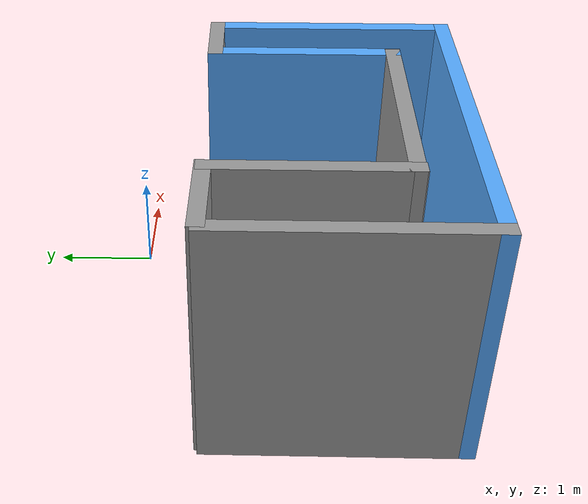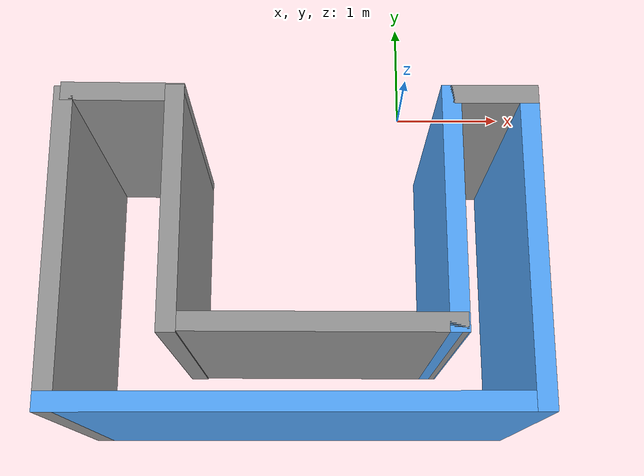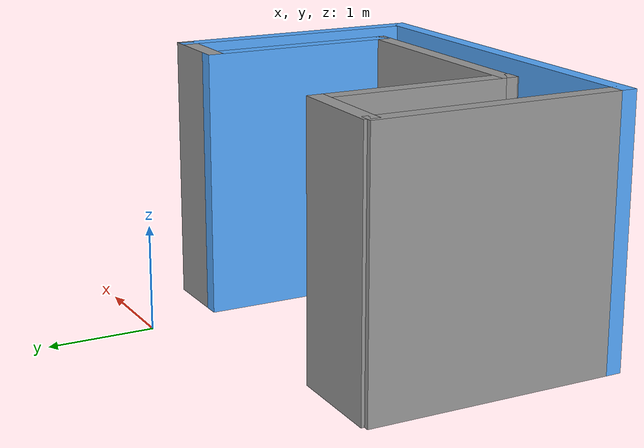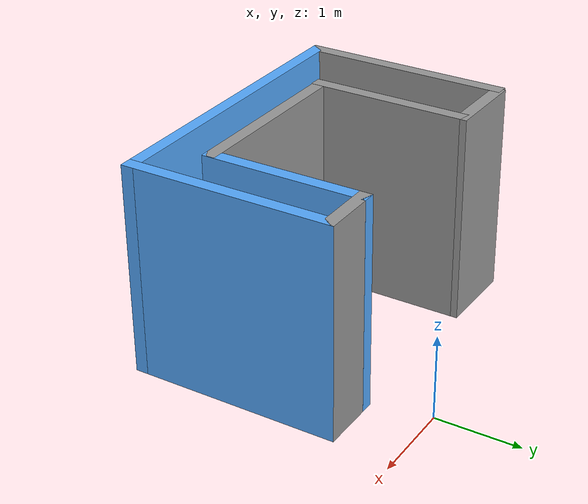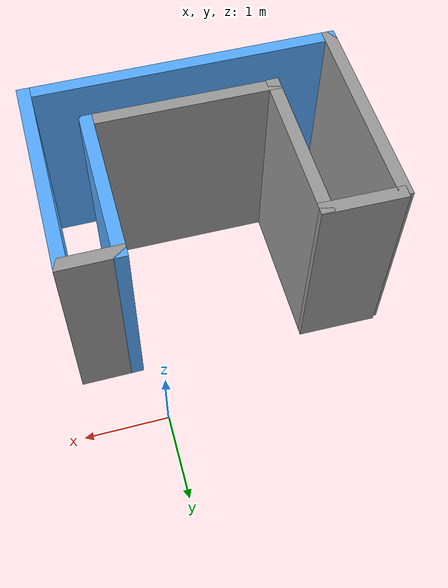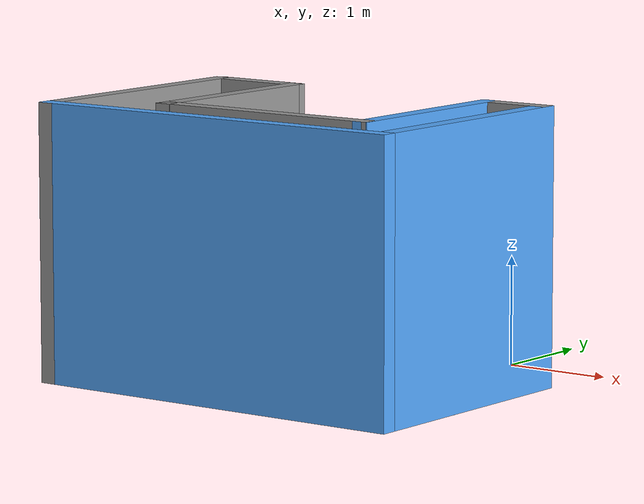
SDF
<?xml version='1.0'?>
<sdf version='1.6'>
  <model name='mybuilding'>
    <pose frame=''>-0.98 -1.91954 0 0 -0 0</pose>
    <link name='Wall_0'>
      <collision name='Wall_0_Collision'>
        <geometry>
          <box>
            <size>0.960247 0.15 2.5</size>
          </box>
        </geometry>
        <pose frame=''>0 0 1.25 0 -0 0</pose>
      </collision>
      <visual name='Wall_0_Visual'>
        <pose frame=''>0 0 1.25 0 -0 0</pose>
        <geometry>
          <box>
            <size>0.960247 0.15 2.5</size>
          </box>
        </geometry>
        <material>
          <script>
            <uri>file://media/materials/scripts/gazebo.material</uri>
            <name>Gazebo/Grey</name>
          </script>
          <ambient>1 1 1 1</ambient>
        </material>
        <meta>
          <layer>0</layer>
        </meta>
      </visual>
      <pose frame=''>-1.345 1.18454 0 0 0 -0.012345</pose>
    </link>
    <link name='Wall_1'>
      <collision name='Wall_1_Collision'>
        <geometry>
          <box>
            <size>1.94 0.15 2.5</size>
          </box>
        </geometry>
        <pose frame=''>0 0 1.25 0 -0 0</pose>
      </collision>
      <visual name='Wall_1_Visual'>
        <pose frame=''>0 0 1.25 0 -0 0</pose>
        <geometry>
          <box>
            <size>1.94 0.15 2.5</size>
          </box>
        </geometry>
        <material>
          <script>
            <uri>file://media/materials/scripts/gazebo.material</uri>
            <name>Gazebo/Grey</name>
          </script>
          <ambient>1 1 1 1</ambient>
        </material>
        <meta>
          <layer>0</layer>
        </meta>
      </visual>
      <pose frame=''>-0.94 0.274539 0 0 0 -1.5708</pose>
    </link>
    <link name='Wall_2'>
      <collision name='Wall_2_Collision'>
        <geometry>
          <box>
            <size>2.28038 0.15 2.5</size>
          </box>
        </geometry>
        <pose frame=''>0 0 1.25 0 -0 0</pose>
      </collision>
      <visual name='Wall_2_Visual'>
        <pose frame=''>0 0 1.25 0 -0 0</pose>
        <geometry>
          <box>
            <size>2.28038 0.15 2.5</size>
          </box>
        </geometry>
        <material>
          <script>
            <uri>file://media/materials/scripts/gazebo.material</uri>
            <name>Gazebo/Grey</name>
          </script>
          <ambient>1 1 1 1</ambient>
        </material>
        <meta>
          <layer>0</layer>
        </meta>
      </visual>
      <pose frame=''>0.125 -0.615461 0 0 0 -0.004695</pose>
    </link>
    <link name='Wall_3'>
      <collision name='Wall_3_Collision'>
        <geometry>
          <box>
            <size>1.93025 0.15 2.5</size>
          </box>
        </geometry>
        <pose frame=''>0 0 1.25 0 -0 0</pose>
      </collision>
      <visual name='Wall_3_Visual'>
        <pose frame=''>0 0 1.25 0 -0 0</pose>
        <geometry>
          <box>
            <size>1.93025 0.15 2.5</size>
          </box>
        </geometry>
        <material>
          <script>
            <uri>file://media/materials/scripts/gazebo.material</uri>
            <name>Gazebo/Grey</name>
          </script>
          <ambient>0.333333 0.666667 1 1</ambient>
        </material>
        <meta>
          <layer>0</layer>
        </meta>
      </visual>
      <pose frame=''>1.2 0.269539 0 0 -0 1.5708</pose>
    </link>
    <link name='Wall_4'>
      <collision name='Wall_4_Collision'>
        <geometry>
          <box>
            <size>0.75 0.15 2.5</size>
          </box>
        </geometry>
        <pose frame=''>0 0 1.25 0 -0 0</pose>
      </collision>
      <visual name='Wall_4_Visual'>
        <pose frame=''>0 0 1.25 0 -0 0</pose>
        <geometry>
          <box>
            <size>0.75 0.15 2.5</size>
          </box>
        </geometry>
        <material>
          <script>
            <uri>file://media/materials/scripts/gazebo.material</uri>
            <name>Gazebo/Grey</name>
          </script>
          <ambient>1 1 1 1</ambient>
        </material>
        <meta>
          <layer>0</layer>
        </meta>
      </visual>
      <pose frame=''>1.5 1.15954 0 0 -0 0</pose>
    </link>
    <link name='Wall_5'>
      <collision name='Wall_5_Collision'>
        <geometry>
          <box>
            <size>2.5 0.15 2.5</size>
          </box>
        </geometry>
        <pose frame=''>0 0 1.25 0 -0 0</pose>
      </collision>
      <visual name='Wall_5_Visual'>
        <pose frame=''>0 0 1.25 0 -0 0</pose>
        <geometry>
          <box>
            <size>2.5 0.15 2.5</size>
          </box>
        </geometry>
        <material>
          <script>
            <uri>file://media/materials/scripts/gazebo.material</uri>
            <name>Gazebo/Grey</name>
          </script>
          <ambient>0.333333 0.666667 1 1</ambient>
        </material>
        <meta>
          <layer>0</layer>
        </meta>
      </visual>
      <pose frame=''>1.8 -0.015461 0 0 0 -1.5708</pose>
    </link>
    <link name='Wall_6'>
      <collision name='Wall_6_Collision'>
        <geometry>
          <box>
            <size>3.75 0.15 2.5</size>
          </box>
        </geometry>
        <pose frame=''>0 0 1.25 0 -0 0</pose>
      </collision>
      <visual name='Wall_6_Visual'>
        <pose frame=''>0 0 1.25 0 -0 0</pose>
        <geometry>
          <box>
            <size>3.75 0.15 2.5</size>
          </box>
        </geometry>
        <material>
          <script>
            <uri>file://media/materials/scripts/gazebo.material</uri>
            <name>Gazebo/Grey</name>
          </script>
          <ambient>0.333333 0.666667 1 1</ambient>
        </material>
        <meta>
          <layer>0</layer>
        </meta>
      </visual>
      <pose frame=''>0 -1.19046 0 0 -0 3.14159</pose>
    </link>
    <link name='Wall_7'>
      <collision name='Wall_7_Collision'>
        <geometry>
          <box>
            <size>2.5 0.15 2.5</size>
          </box>
        </geometry>
        <pose frame=''>0 0 1.25 0 -0 0</pose>
      </collision>
      <visual name='Wall_7_Visual'>
        <pose frame=''>0 0 1.25 0 -0 0</pose>
        <geometry>
          <box>
            <size>2.5 0.15 2.5</size>
          </box>
        </geometry>
        <material>
          <script>
            <uri>file://media/materials/scripts/gazebo.material</uri>
            <name>Gazebo/Grey</name>
          </script>
          <ambient>1 1 1 1</ambient>
        </material>
        <meta>
          <layer>0</layer>
        </meta>
      </visual>
      <pose frame=''>-1.8 -0.015461 0 0 -0 1.5708</pose>
    </link>
    <static>1</static>
  </model>
</sdf>
